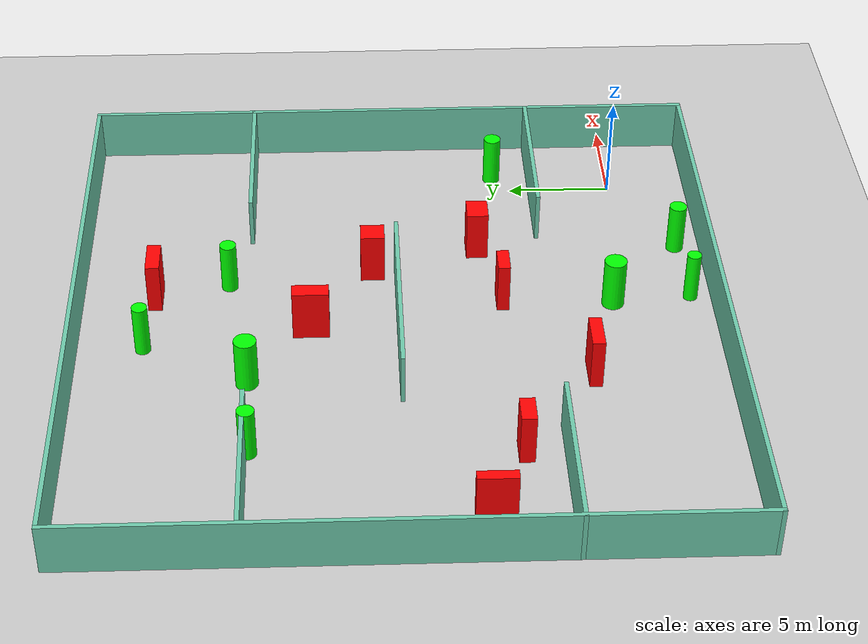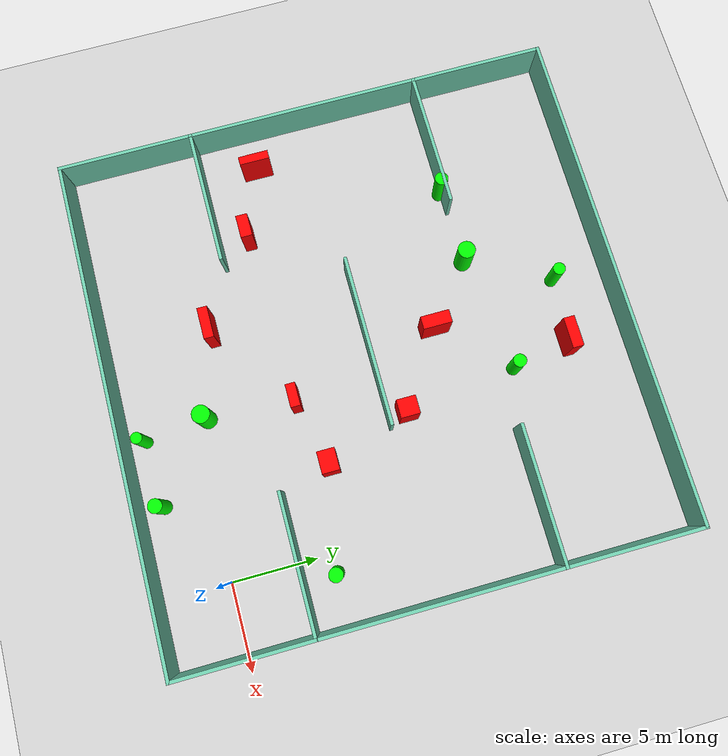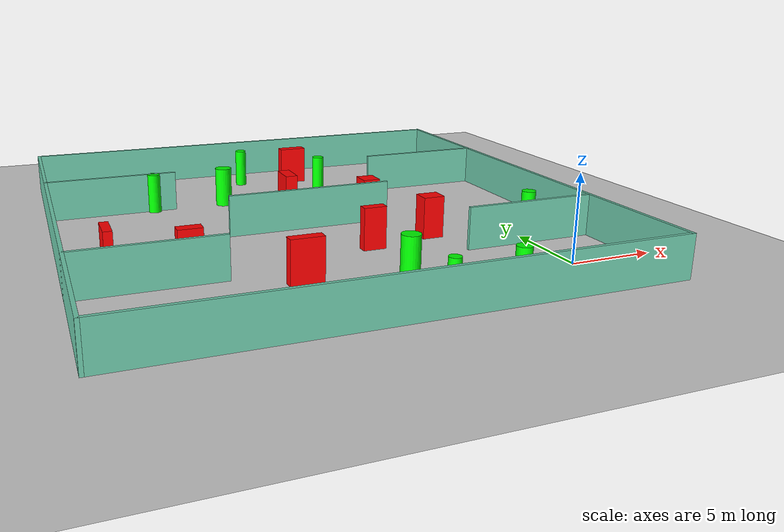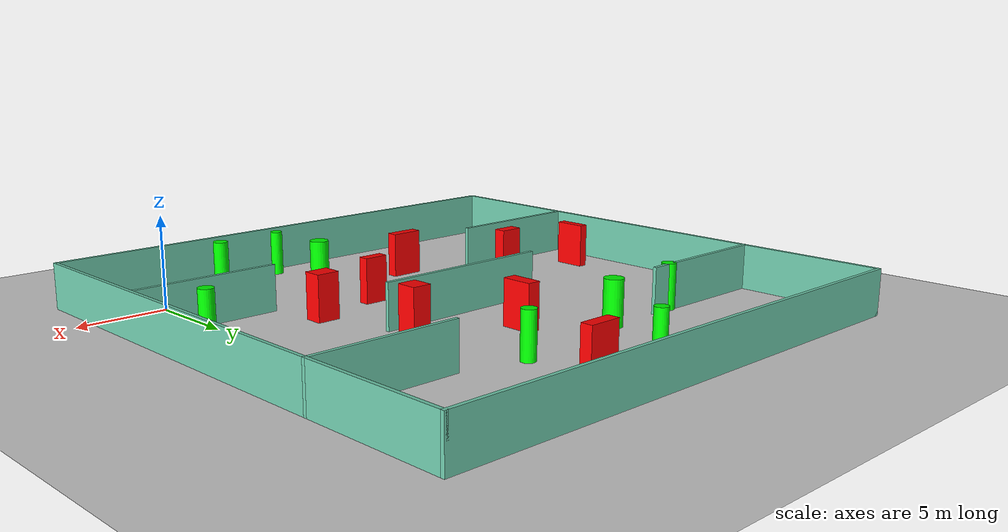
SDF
<sdf version="1.7">
 <world name="default">
  <light name="sun" type="directional">
   <pose>0 0 10 0 -0 0</pose>
   <diffuse>0.8 0.8 0.8 1</diffuse>
   <specular>0.2 0.2 0.2 1</specular>
   <attenuation>
    <range>1000</range>
    <constant>0.9</constant>
    <linear>0.01</linear>
    <quadratic>0.001</quadratic>
   </attenuation>
   <direction>-0.5 0.1 -0.9</direction>
   <spot><inner_angle>0</inner_angle><outer_angle>0</outer_angle><falloff>0</falloff></spot>
  </light>
  <model name="ground_plane">
   <static>1</static>
   <link name="link">
    <collision name="collision">
     <geometry><plane><normal>0 0 1</normal><size>100 100</size></plane></geometry>
     <surface>
      <contact><collide_bitmask>65535</collide_bitmask></contact>
      <friction><ode><mu>100</mu><mu2>50</mu2></ode></friction>
     </surface>
    </collision>
    <visual name="visual">
     <cast_shadows>0</cast_shadows>
     <geometry><plane><normal>0 0 1</normal><size>100 100</size></plane></geometry>
     <material>
      <script><uri>file://media/materials/scripts/gazebo.material</uri><name>Gazebo/Grey</name></script>
     </material>
    </visual>
   </link>
  </model>
  <gravity>0 0 -9.8</gravity>
  <magnetic_field>6e-06 2.3e-05 -4.2e-05</magnetic_field>
  <atmosphere type="adiabatic"/>
  <physics type="ode">
   <max_step_size>0.001</max_step_size>
   <real_time_factor>1</real_time_factor>
   <real_time_update_rate>1000</real_time_update_rate>
  </physics>
  <scene><ambient>0.4 0.4 0.4 1</ambient><background>0.7 0.7 0.7 1</background><shadows>1</shadows></scene>
  <spherical_coordinates>
   <surface_model>EARTH_WGS84</surface_model>
   <latitude_deg>0</latitude_deg>
   <longitude_deg>0</longitude_deg>
   <elevation>0</elevation>
   <heading_deg>0</heading_deg>
  </spherical_coordinates>
  <model name="my_base_walls">
   <link name="Wall_10">
    <collision name="Wall_10_Collision">
     <geometry><box><size>8.2 0.2 2.5</size></box></geometry>
     <pose>0 0 1.25 0 -0 0</pose>
    </collision>
    <visual name="Wall_10_Visual">
     <pose>0 0 1.25 0 -0 0</pose>
     <geometry><box><size>8.2 0.2 2.5</size></box></geometry>
     <material>
      <script><uri>file://media/materials/scripts/gazebo.material</uri><name>Gazebo/Grey</name></script>
      <ambient>0.435294 0.796078 0.67451 1</ambient>
     </material>
     <meta><layer>0</layer></meta>
    </visual>
    <pose>-11 -7 0 0 -0 0</pose>
   </link>
   <link name="Wall_12">
    <collision name="Wall_12_Collision">
     <geometry><box><size>8.2 0.2 2.5</size></box></geometry>
     <pose>0 0 1.25 0 -0 0</pose>
    </collision>
    <visual name="Wall_12_Visual">
     <pose>0 0 1.25 0 -0 0</pose>
     <geometry><box><size>8.2 0.2 2.5</size></box></geometry>
     <material>
      <script><uri>file://media/materials/scripts/gazebo.material</uri><name>Gazebo/Grey</name></script>
      <ambient>0.435294 0.796078 0.67451 1</ambient>
     </material>
     <meta><layer>0</layer></meta>
    </visual>
    <pose>-11 7 0 0 -0 0</pose>
   </link>
   <link name="Wall_14">
    <collision name="Wall_14_Collision">
     <geometry><box><size>8.2 0.2 2.5</size></box></geometry>
     <pose>0 0 1.25 0 -0 0</pose>
    </collision>
    <visual name="Wall_14_Visual">
     <pose>0 0 1.25 0 -0 0</pose>
     <geometry><box><size>8.2 0.2 2.5</size></box></geometry>
     <material>
      <script><uri>file://media/materials/scripts/gazebo.material</uri><name>Gazebo/Grey</name></script>
      <ambient>0.435294 0.796078 0.67451 1</ambient>
     </material>
     <meta><layer>0</layer></meta>
    </visual>
    <pose>11 7 0 0 -0 3.14159</pose>
   </link>
   <link name="Wall_16">
    <collision name="Wall_16_Collision">
     <geometry><box><size>10.2 0.2 2.5</size></box></geometry>
     <pose>0 0 1.25 0 -0 0</pose>
    </collision>
    <visual name="Wall_16_Visual">
     <pose>0 0 1.25 0 -0 0</pose>
     <geometry><box><size>10.2 0.2 2.5</size></box></geometry>
     <material>
      <script><uri>file://media/materials/scripts/gazebo.material</uri><name>Gazebo/Grey</name></script>
      <ambient>0.435294 0.796078 0.67451 1</ambient>
     </material>
     <meta><layer>0</layer></meta>
    </visual>
    <pose>0 0 0 0 -0 3.14159</pose>
   </link>
   <link name="Wall_2">
    <collision name="Wall_2_Collision">
     <geometry><box><size>30.2 0.2 2.5</size></box></geometry>
     <pose>0 0 1.25 0 -0 0</pose>
    </collision>
    <visual name="Wall_2_Visual">
     <pose>0 0 1.25 0 -0 0</pose>
     <geometry><box><size>30.2 0.2 2.5</size></box></geometry>
     <material>
      <script><uri>file://media/materials/scripts/gazebo.material</uri><name>Gazebo/Grey</name></script>
      <ambient>0.435294 0.796078 0.67451 1</ambient>
     </material>
     <meta><layer>0</layer></meta>
    </visual>
    <pose>0 -15 0 0 -0 3.14159</pose>
   </link>
   <link name="Wall_3">
    <collision name="Wall_3_Collision">
     <geometry><box><size>30.2 0.2 2.5</size></box></geometry>
     <pose>0 0 1.25 0 -0 0</pose>
    </collision>
    <visual name="Wall_3_Visual">
     <pose>0 0 1.25 0 -0 0</pose>
     <geometry><box><size>30.2 0.2 2.5</size></box></geometry>
     <material>
      <script><uri>file://media/materials/scripts/gazebo.material</uri><name>Gazebo/Grey</name></script>
      <ambient>0.435294 0.796078 0.67451 1</ambient>
     </material>
     <meta><layer>0</layer></meta>
    </visual>
    <pose>-15 0 0 0 -0 1.5708</pose>
   </link>
   <link name="Wall_4">
    <collision name="Wall_4_Collision">
     <geometry><box><size>30.2 0.2 2.5</size></box></geometry>
     <pose>0 0 1.25 0 -0 0</pose>
    </collision>
    <visual name="Wall_4_Visual">
     <pose>0 0 1.25 0 -0 0</pose>
     <geometry><box><size>30.2 0.2 2.5</size></box></geometry>
     <material>
      <script><uri>file://media/materials/scripts/gazebo.material</uri><name>Gazebo/Grey</name></script>
      <ambient>0.435294 0.796078 0.67451 1</ambient>
     </material>
     <meta><layer>0</layer></meta>
    </visual>
    <pose>0 15 0 0 -0 0</pose>
   </link>
   <link name="Wall_6">
    <collision name="Wall_6_Collision">
     <geometry><box><size>30.2 0.2 2.5</size></box></geometry>
     <pose>0 0 1.25 0 -0 0</pose>
    </collision>
    <visual name="Wall_6_Visual">
     <pose>0 0 1.25 0 -0 0</pose>
     <geometry><box><size>30.2 0.2 2.5</size></box></geometry>
     <material>
      <script><uri>file://media/materials/scripts/gazebo.material</uri><name>Gazebo/Grey</name></script>
      <ambient>0.435294 0.796078 0.67451 1</ambient>
     </material>
     <meta><layer>0</layer></meta>
    </visual>
    <pose>15 0 0 0 -0 1.5708</pose>
   </link>
   <link name="Wall_8">
    <collision name="Wall_8_Collision">
     <geometry><box><size>8.2 0.2 2.5</size></box></geometry>
     <pose>0 0 1.25 0 -0 0</pose>
    </collision>
    <visual name="Wall_8_Visual">
     <pose>0 0 1.25 0 -0 0</pose>
     <geometry><box><size>8.2 0.2 2.5</size></box></geometry>
     <material>
      <script><uri>file://media/materials/scripts/gazebo.material</uri><name>Gazebo/Grey</name></script>
      <ambient>0.435294 0.796078 0.67451 1</ambient>
     </material>
     <meta><layer>0</layer></meta>
    </visual>
    <pose>11 -7 0 0 -0 3.14159</pose>
   </link>
   <static>1</static>
   <pose>-11 11 0 0 -0 0</pose>
  </model>
  <model name="cylinder1">
   <static>1</static>
   <link name="link">
    <inertial>
     <mass>1</mass>
     <inertia><ixx>0.5</ixx><ixy>0</ixy><ixz>0</ixz><iyy>0.5</iyy><iyz>0</iyz><izz>1</izz></inertia>
    </inertial>
    <collision name="collision">
     <geometry><cylinder><radius>0.3964195132002261</radius><length>2.5</length></cylinder></geometry>
    </collision>
    <visual name="visual">
     <geometry><cylinder><radius>0.3964195132002261</radius><length>2.5</length></cylinder></geometry>
     <material>
      <ambient>0 1 0 1</ambient>
      <diffuse>0 1 0 1</diffuse>
      <specular>0.1 0.1 0.1 1</specular>
      <emissive>0 0 0 0</emissive>
     </material>
    </visual>
   </link>
   <pose>-19.314275692978505 17.838933462158884 1.25 0 0 0</pose>
  </model>
  <model name="cylinder2">
   <static>1</static>
   <link name="link">
    <inertial>
     <mass>1</mass>
     <inertia><ixx>0.5</ixx><ixy>0</ixy><ixz>0</ixz><iyy>0.5</iyy><iyz>0</iyz><izz>1</izz></inertia>
    </inertial>
    <collision name="collision">
     <geometry><cylinder><radius>0.38793117414900485</radius><length>2.5</length></cylinder></geometry>
    </collision>
    <visual name="visual">
     <geometry><cylinder><radius>0.38793117414900485</radius><length>2.5</length></cylinder></geometry>
     <material>
      <ambient>0 1 0 1</ambient>
      <diffuse>0 1 0 1</diffuse>
      <specular>0.1 0.1 0.1 1</specular>
      <emissive>0 0 0 0</emissive>
     </material>
    </visual>
   </link>
   <pose>-7.520593315010068 18.99303348186998 1.25 0 0 0</pose>
  </model>
  <model name="cylinder3">
   <static>1</static>
   <link name="link">
    <inertial>
     <mass>1</mass>
     <inertia><ixx>0.5</ixx><ixy>0</ixy><ixz>0</ixz><iyy>0.5</iyy><iyz>0</iyz><izz>1</izz></inertia>
    </inertial>
    <collision name="collision">
     <geometry><cylinder><radius>0.4141114082946915</radius><length>2.5</length></cylinder></geometry>
    </collision>
    <visual name="visual">
     <geometry><cylinder><radius>0.4141114082946915</radius><length>2.5</length></cylinder></geometry>
     <material>
      <ambient>0 1 0 1</ambient>
      <diffuse>0 1 0 1</diffuse>
      <specular>0.1 0.1 0.1 1</specular>
      <emissive>0 0 0 0</emissive>
     </material>
    </visual>
   </link>
   <pose>1.068186210061615 5.888054296597257 1.25 0 0 0</pose>
  </model>
  <model name="cylinder4">
   <static>1</static>
   <link name="link">
    <inertial>
     <mass>1</mass>
     <inertia><ixx>0.5</ixx><ixy>0</ixy><ixz>0</ixz><iyy>0.5</iyy><iyz>0</iyz><izz>1</izz></inertia>
    </inertial>
    <collision name="collision">
     <geometry><cylinder><radius>0.5273331111559666</radius><length>2.5</length></cylinder></geometry>
    </collision>
    <visual name="visual">
     <geometry><cylinder><radius>0.5273331111559666</radius><length>2.5</length></cylinder></geometry>
     <material>
      <ambient>0 1 0 1</ambient>
      <diffuse>0 1 0 1</diffuse>
      <specular>0.1 0.1 0.1 1</specular>
      <emissive>0 0 0 0</emissive>
     </material>
    </visual>
   </link>
   <pose>-9.349920678014605 0.8160330383210534 1.25 0 0 0</pose>
  </model>
  <model name="cylinder5">
   <static>1</static>
   <link name="link">
    <inertial>
     <mass>1</mass>
     <inertia><ixx>0.5</ixx><ixy>0</ixy><ixz>0</ixz><iyy>0.5</iyy><iyz>0</iyz><izz>1</izz></inertia>
    </inertial>
    <collision name="collision">
     <geometry><cylinder><radius>0.36315209158141426</radius><length>2.5</length></cylinder></geometry>
    </collision>
    <visual name="visual">
     <geometry><cylinder><radius>0.36315209158141426</radius><length>2.5</length></cylinder></geometry>
     <material>
      <ambient>0 1 0 1</ambient>
      <diffuse>0 1 0 1</diffuse>
      <specular>0.1 0.1 0.1 1</specular>
      <emissive>0 0 0 0</emissive>
     </material>
    </visual>
   </link>
   <pose>-12.110803107982953 22.84707958357492 1.25 0 0 0</pose>
  </model>
  <model name="cylinder6">
   <static>1</static>
   <link name="link">
    <inertial>
     <mass>1</mass>
     <inertia><ixx>0.5</ixx><ixy>0</ixy><ixz>0</ixz><iyy>0.5</iyy><iyz>0</iyz><izz>1</izz></inertia>
    </inertial>
    <collision name="collision">
     <geometry><cylinder><radius>0.3343055759393606</radius><length>2.5</length></cylinder></geometry>
    </collision>
    <visual name="visual">
     <geometry><cylinder><radius>0.3343055759393606</radius><length>2.5</length></cylinder></geometry>
     <material>
      <ambient>0 1 0 1</ambient>
      <diffuse>0 1 0 1</diffuse>
      <specular>0.1 0.1 0.1 1</specular>
      <emissive>0 0 0 0</emissive>
     </material>
    </visual>
   </link>
   <pose>-8.99123708063264 -2.928316838318713 1.25 0 0 0</pose>
  </model>
  <model name="cylinder7">
   <static>1</static>
   <link name="link">
    <inertial>
     <mass>1</mass>
     <inertia><ixx>0.5</ixx><ixy>0</ixy><ixz>0</ixz><iyy>0.5</iyy><iyz>0</iyz><izz>1</izz></inertia>
    </inertial>
    <collision name="collision">
     <geometry><cylinder><radius>0.41307189126159094</radius><length>2.5</length></cylinder></geometry>
    </collision>
    <visual name="visual">
     <geometry><cylinder><radius>0.41307189126159094</radius><length>2.5</length></cylinder></geometry>
     <material>
      <ambient>0 1 0 1</ambient>
      <diffuse>0 1 0 1</diffuse>
      <specular>0.1 0.1 0.1 1</specular>
      <emissive>0 0 0 0</emissive>
     </material>
    </visual>
   </link>
   <pose>-5.084046305881021 -2.7224401432310033 1.25 0 0 0</pose>
  </model>
  <model name="cylinder8">
   <static>1</static>
   <link name="link">
    <inertial>
     <mass>1</mass>
     <inertia><ixx>0.5</ixx><ixy>0</ixy><ixz>0</ixz><iyy>0.5</iyy><iyz>0</iyz><izz>1</izz></inertia>
    </inertial>
    <collision name="collision">
     <geometry><cylinder><radius>0.5200273393885967</radius><length>2.5</length></cylinder></geometry>
    </collision>
    <visual name="visual">
     <geometry><cylinder><radius>0.5200273393885967</radius><length>2.5</length></cylinder></geometry>
     <material>
      <ambient>0 1 0 1</ambient>
      <diffuse>0 1 0 1</diffuse>
      <specular>0.1 0.1 0.1 1</specular>
      <emissive>0 0 0 0</emissive>
     </material>
    </visual>
   </link>
   <pose>-14.651944068934482 17.99329743795609 1.25 0 0 0</pose>
  </model>
  <model name="box1">
   <static>1</static>
   <link name="link">
    <inertial>
     <mass>1</mass>
     <inertia><ixx>0.083</ixx><ixy>0</ixy><ixz>0</ixz><iyy>0.083</iyy><iyz>0</iyz><izz>0.083</izz></inertia>
    </inertial>
    <collision name="collision">
     <geometry><box><size>0.7563034322346092 1.7107098755789174 2.5</size></box></geometry>
    </collision>
    <visual name="visual">
     <geometry><box><size>0.7563034322346092 1.7107098755789174 2.5</size></box></geometry>
     <material>
      <ambient>1 0 0 1</ambient>
      <diffuse>1 0 0 1</diffuse>
      <specular>0.1 0.1 0.1 1</specular>
      <emissive>0 0 0 0</emissive>
     </material>
    </visual>
    <sensor name="my_contact" type="contact">
     <contact><collision>box_collision</collision><topic>__default_topic__</topic></contact>
    </sensor>
   </link>
   <pose>-11.091373856735512 15.092789328482809 1.25 0 0 0</pose>
  </model>
  <model name="box2">
   <static>1</static>
   <link name="link">
    <inertial>
     <mass>1</mass>
     <inertia><ixx>0.083</ixx><ixy>0</ixy><ixz>0</ixz><iyy>0.083</iyy><iyz>0</iyz><izz>0.083</izz></inertia>
    </inertial>
    <collision name="collision">
     <geometry><box><size>1.3757230553181228 0.6915125192937872 2.5</size></box></geometry>
    </collision>
    <visual name="visual">
     <geometry><box><size>1.3757230553181228 0.6915125192937872 2.5</size></box></geometry>
     <material>
      <ambient>1 0 0 1</ambient>
      <diffuse>1 0 0 1</diffuse>
      <specular>0.1 0.1 0.1 1</specular>
      <emissive>0 0 0 0</emissive>
     </material>
    </visual>
    <sensor name="my_contact" type="contact">
     <contact><collision>box_collision</collision><topic>__default_topic__</topic></contact>
    </sensor>
   </link>
   <pose>-19.56626333321828 5.779336222284549 1.25 0 0 0</pose>
  </model>
  <model name="box3">
   <static>1</static>
   <link name="link">
    <inertial>
     <mass>1</mass>
     <inertia><ixx>0.083</ixx><ixy>0</ixy><ixz>0</ixz><iyy>0.083</iyy><iyz>0</iyz><izz>0.083</izz></inertia>
    </inertial>
    <collision name="collision">
     <geometry><box><size>1.8685335110441188 0.5932593985054515 2.5</size></box></geometry>
    </collision>
    <visual name="visual">
     <geometry><box><size>1.8685335110441188 0.5932593985054515 2.5</size></box></geometry>
     <material>
      <ambient>1 0 0 1</ambient>
      <diffuse>1 0 0 1</diffuse>
      <specular>0.1 0.1 0.1 1</specular>
      <emissive>0 0 0 0</emissive>
     </material>
    </visual>
    <sensor name="my_contact" type="contact">
     <contact><collision>box_collision</collision><topic>__default_topic__</topic></contact>
    </sensor>
   </link>
   <pose>-14.441993940484508 2.265966230229446 1.25 0 0 0</pose>
  </model>
  <model name="box4">
   <static>1</static>
   <link name="link">
    <inertial>
     <mass>1</mass>
     <inertia><ixx>0.083</ixx><ixy>0</ixy><ixz>0</ixz><iyy>0.083</iyy><iyz>0</iyz><izz>0.083</izz></inertia>
    </inertial>
    <collision name="collision">
     <geometry><box><size>1.0751449928907406 1.143518256629823 2.5</size></box></geometry>
    </collision>
    <visual name="visual">
     <geometry><box><size>1.0751449928907406 1.143518256629823 2.5</size></box></geometry>
     <material>
      <ambient>1 0 0 1</ambient>
      <diffuse>1 0 0 1</diffuse>
      <specular>0.1 0.1 0.1 1</specular>
      <emissive>0 0 0 0</emissive>
     </material>
    </visual>
    <sensor name="my_contact" type="contact">
     <contact><collision>box_collision</collision><topic>__default_topic__</topic></contact>
    </sensor>
   </link>
   <pose>-6.6735210336281945 12.14773848447363 1.25 0 0 0</pose>
  </model>
  <model name="box5">
   <static>1</static>
   <link name="link">
    <inertial>
     <mass>1</mass>
     <inertia><ixx>0.083</ixx><ixy>0</ixy><ixz>0</ixz><iyy>0.083</iyy><iyz>0</iyz><izz>0.083</izz></inertia>
    </inertial>
    <collision name="collision">
     <geometry><box><size>1.281938522349289 1.0289442688562238 2.5</size></box></geometry>
    </collision>
    <visual name="visual">
     <geometry><box><size>1.281938522349289 1.0289442688562238 2.5</size></box></geometry>
     <material>
      <ambient>1 0 0 1</ambient>
      <diffuse>1 0 0 1</diffuse>
      <specular>0.1 0.1 0.1 1</specular>
      <emissive>0 0 0 0</emissive>
     </material>
    </visual>
    <sensor name="my_contact" type="contact">
     <contact><collision>box_collision</collision><topic>__default_topic__</topic></contact>
    </sensor>
   </link>
   <pose>-4.9485745472207725 7.039593616988439 1.25 0 0 0</pose>
  </model>
  <model name="box6">
   <static>1</static>
   <link name="link">
    <inertial>
     <mass>1</mass>
     <inertia><ixx>0.083</ixx><ixy>0</ixy><ixz>0</ixz><iyy>0.083</iyy><iyz>0</iyz><izz>0.083</izz></inertia>
    </inertial>
    <collision name="collision">
     <geometry><box><size>1.3624930445327497 0.5733010793414315 2.5</size></box></geometry>
    </collision>
    <visual name="visual">
     <geometry><box><size>1.3624930445327497 0.5733010793414315 2.5</size></box></geometry>
     <material>
      <ambient>1 0 0 1</ambient>
      <diffuse>1 0 0 1</diffuse>
      <specular>0.1 0.1 0.1 1</specular>
      <emissive>0 0 0 0</emissive>
     </material>
    </visual>
    <sensor name="my_contact" type="contact">
     <contact><collision>box_collision</collision><topic>__default_topic__</topic></contact>
    </sensor>
   </link>
   <pose>-9.039315460873613 6.056828130077763 1.25 0 0 0</pose>
  </model>
  <model name="box7">
   <static>1</static>
   <link name="link">
    <inertial>
     <mass>1</mass>
     <inertia><ixx>0.083</ixx><ixy>0</ixy><ixz>0</ixz><iyy>0.083</iyy><iyz>0</iyz><izz>0.083</izz></inertia>
    </inertial>
    <collision name="collision">
     <geometry><box><size>0.5016614858167351 1.792096858412199 2.5</size></box></geometry>
    </collision>
    <visual name="visual">
     <geometry><box><size>0.5016614858167351 1.792096858412199 2.5</size></box></geometry>
     <material>
      <ambient>1 0 0 1</ambient>
      <diffuse>1 0 0 1</diffuse>
      <specular>0.1 0.1 0.1 1</specular>
      <emissive>0 0 0 0</emissive>
     </material>
    </visual>
    <sensor name="my_contact" type="contact">
     <contact><collision>box_collision</collision><topic>__default_topic__</topic></contact>
    </sensor>
   </link>
   <pose>-23.598991069271626 7.358316929879251 1.25 0 0 0</pose>
  </model>
  <model name="box8">
   <static>1</static>
   <link name="link">
    <inertial>
     <mass>1</mass>
     <inertia><ixx>0.083</ixx><ixy>0</ixy><ixz>0</ixz><iyy>0.083</iyy><iyz>0</iyz><izz>0.083</izz></inertia>
    </inertial>
    <collision name="collision">
     <geometry><box><size>1.811183944934168 0.6552298395674344 2.5</size></box></geometry>
    </collision>
    <visual name="visual">
     <geometry><box><size>1.811183944934168 0.6552298395674344 2.5</size></box></geometry>
     <material>
      <ambient>1 0 0 1</ambient>
      <diffuse>1 0 0 1</diffuse>
      <specular>0.1 0.1 0.1 1</specular>
      <emissive>0 0 0 0</emissive>
     </material>
    </visual>
    <sensor name="my_contact" type="contact">
     <contact><collision>box_collision</collision><topic>__default_topic__</topic></contact>
    </sensor>
   </link>
   <pose>-8.309068490979538 22.460451559682873 1.25 0 0 0</pose>
  </model>
 </world>
</sdf>
